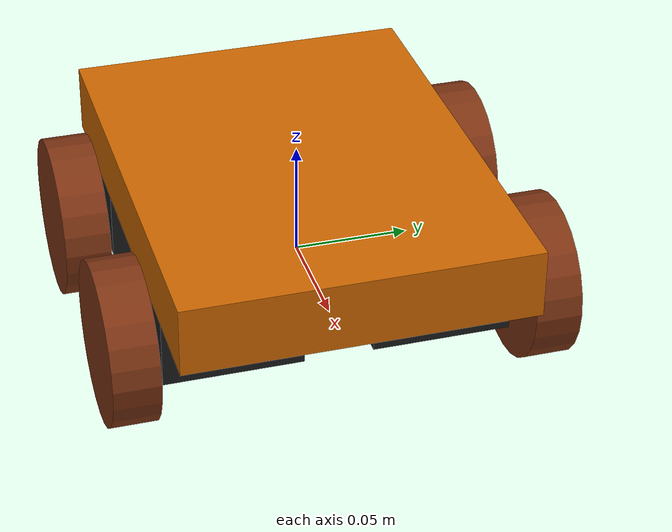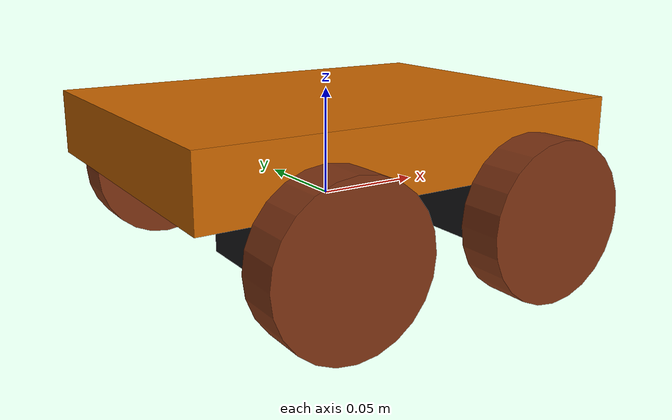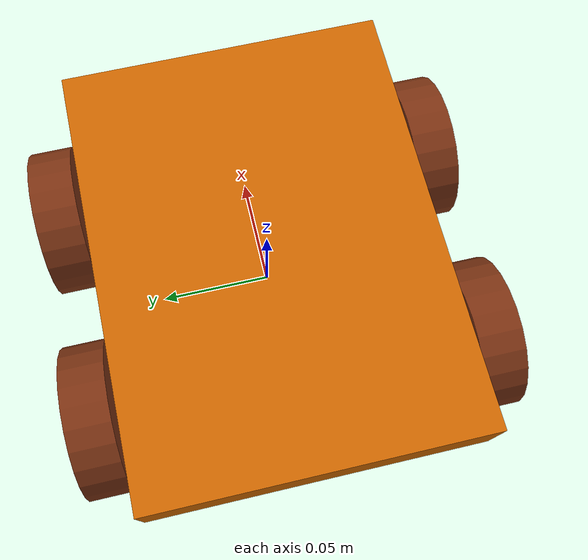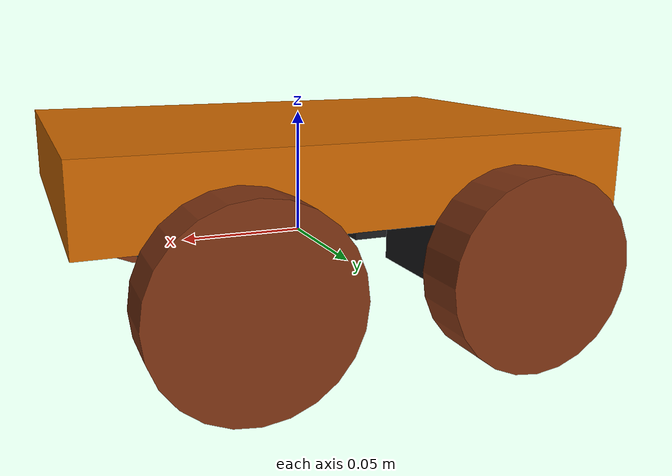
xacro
<?xml version="1.0"?>
<robot xmlns:xacro="http://www.ros.org/wiki/xacro" name="ylvov_robot">
    <xacro:include filename="$(find bot_description)/urdf/properties.xacro" />
	<xacro:include filename="$(find bot_description)/urdf/materials.xacro" />
	<xacro:include filename="$(find bot_description)/urdf/macros.xacro" />
	<xacro:include filename="$(find bot_description)/urdf/links.xacro" />
	<xacro:include filename="$(find bot_description)/urdf/joints.xacro" />
</robot>

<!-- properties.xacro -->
<robot xmlns:xacro="http://www.ros.org/wiki/xacro">
    <xacro:property name="base_length" value="0.2" />
    <xacro:property name="base_width" value="0.15" />
    <xacro:property name="base_height" value="0.03" />
    <xacro:property name="base_mass" value="1" />

    <xacro:property name="engine_length" value="0.06" />
    <xacro:property name="engine_width" value="0.03" />
    <xacro:property name="engine_height" value="0.03" />
    <xacro:property name="engine_mass" value="0.1" />

    <xacro:property name="shaft_length" value="0.004" />
    <xacro:property name="shaft_radius" value="0.003" />

    <xacro:property name="wheel_length" value="0.02" />
    <xacro:property name="wheel_radius" value="0.035" />
</robot>

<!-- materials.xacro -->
<robot xmlns:xacro="http://www.ros.org/wiki/xacro">
	<material name="black">
		<color rgba="0.0 0.0 0.0 1.0" />
	</material>
	<material name="orange">
		<color rgba="0.8 0.4 0.0 1.0" />
	</material>
	<material name="green">
		<color rgba="0.1 0.6 0.1 1.0" />
	</material>
	<material name="blue">
		<color rgba="0.1 0.1 0.8 1.0" />
	</material>
	<material name="brown">
		<color rgba="0.49 0.20 0.074 1.0" />
	</material>
	<material name="grey">
		<color rgba="0.1 0.1 0.11 1.0" />
	</material>
</robot>

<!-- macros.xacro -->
<robot xmlns:xacro="http://www.ros.org/wiki/xacro">
	<xacro:macro name="cylinder_inertia" params="m r h">
		<inertial>
			<origin xyz="0.0 0.0 0.0" rpy="0.0 0.0 0.0" />
			<mass value="${m}" />
			<inertia ixx="${m*(3.0*r*r+h*h)/12.0}" ixy="0" ixz="0" iyy="${m*(3.0*r*r+h*h)/12.0}" iyz="0" izz="${m*r*r/2.0}" />
		</inertial>
	</xacro:macro>
	<xacro:macro name="box_inertia" params="m x y z angle">
		<inertial>
			<origin xyz="0.0 0.0 0.0" rpy="0 0 2" />
			<mass value="${m}" />
			<inertia ixx="${m*(y*y+z*z)/12.0}" ixy="0" ixz="0" iyy="${m*(x*x+z*z)/12.0}" iyz="0" izz="${m*(x*x+y*y)/12.0}" />
		</inertial>
	</xacro:macro>
	<xacro:macro name="sphere_inertia" params="m r">
		<inertial>
			<origin xyz="0.0 0.0 0.0" rpy="0.0 0.0 0.0" />
			<mass value="${m}" />
			<inertia ixx="${2.0*m*r*r/5.0}" ixy="0" ixz="0" iyy="${2.0m*r*r/5.0}" iyz="0" izz="${2.0*m*r*r/5.0}" />
		</inertial>
	</xacro:macro>
</robot>

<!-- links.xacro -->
<robot xmlns:xacro="http://www.ros.org/wiki/xacro">
	<link name="base_footprint" />
	<link name="base_link">
		<xacro:box_inertia m="${base_mass}" x="${base_length}"
			y="${base_width}" z="${base_height}" angle="0"/>
		<visual>
			<origin xyz="0.0 0.0 0.0" rpy="0.0 0.0 0.0" />
			<geometry>
				<box size="${base_length} ${base_width} ${base_height}" />
			</geometry>
			<material name="orange" />
		</visual>
		<collision>
			<origin xyz="0.0 0.0 0.0" rpy="0.0 0.0 0.0" />
			<geometry>
				<box size="${base_length} ${base_width} ${base_height}" />
			</geometry>
		</collision>
	</link>
	<link name="front_right_engine">
			<xacro:box_inertia m="${engine_mass}" x="${engine_length}"
			y="${engine_width}" z="${engine_height}" angle="${pi/4}"/>
		<visual>
			<origin xyz="0.0 0.0 0.0" rpy="0.0 0.0 ${pi/2}" />
			<geometry>
				<box size="${engine_length} ${engine_width} ${engine_height}" />
			</geometry>
			<material name="grey" />
		</visual>
		<collision>
			<origin xyz="0.0 0.0 0.0" rpy="0.0 0.0 ${pi/2}" />
			<geometry>
				<box size="${engine_length} ${engine_width} ${engine_height}" />
			</geometry>
		</collision>
	</link>
	<link name="front_right_shaft">
		<visual>
			<origin xyz="0.0 0.0 0.0" rpy="${pi/2} 0.0 0.0" />
			<geometry>
				<cylinder radius="${shaft_radius}" length="${shaft_length}"/>
			</geometry>
			<material name="black" />
		</visual>
		<collision>
			<origin xyz="0.0 0.0 0.0" rpy="${pi/2} 0.0 0.0" />
			<geometry>
				<cylinder radius="${shaft_radius}" length="${shaft_length}"/>
			</geometry>
		</collision>
	</link>
	<link name="front_right_wheel">
		<visual>
			<origin xyz="0.0 0.0 0.0" rpy="${pi/2} 0.0 0.0" />
			<geometry>
				<cylinder radius="${wheel_radius}" length="${wheel_length}"/>
			</geometry>
			<material name="brown" />
		</visual>
		<collision>
			<origin xyz="0.0 0.0 0.0" rpy="${pi/2} 0.0 0.0" />
			<geometry>
				<cylinder radius="${wheel_radius}" length="${wheel_length}"/>
			</geometry>
		</collision>
	</link>
	<link name="front_left_engine">
		<visual>
			<origin xyz="0.0 0.0 0.0" rpy="0.0 0.0 ${pi/2}" />
			<geometry>
				<box size="${engine_length} ${engine_width} ${engine_height}" />
			</geometry>
			<material name="grey" />
		</visual>
		<collision>
			<origin xyz="0.0 0.0 0.0" rpy="0.0 0.0 ${pi/2}" />
			<geometry>
				<box size="${engine_length} ${engine_width} ${engine_height}" />
			</geometry>
		</collision>
	</link>
	<link name="front_left_shaft">
		<visual>
			<origin xyz="0.0 0.0 0.0" rpy="${pi/2} 0.0 0.0" />
			<geometry>
				<cylinder radius="${shaft_radius}" length="${shaft_length}"/>
			</geometry>
			<material name="black" />
		</visual>
		<collision>
			<origin xyz="0.0 0.0 0.0" rpy="${pi/2} 0.0 0.0" />
			<geometry>
				<cylinder radius="${shaft_radius}" length="${shaft_length}"/>
			</geometry>
		</collision>
	</link>
	<link name="front_left_wheel">
		<visual>
			<origin xyz="0.0 0.0 0.0" rpy="${pi/2} 0.0 0.0" />
			<geometry>
				<cylinder radius="${wheel_radius}" length="${wheel_length}"/>
			</geometry>
			<material name="brown" />
		</visual>
		<collision>
			<origin xyz="0.0 0.0 0.0" rpy="${pi/2} 0.0 0.0" />
			<geometry>
				<cylinder radius="${wheel_radius}" length="${wheel_length}"/>
			</geometry>
		</collision>
	</link>
	<link name="rear_right_engine">
		<visual>
			<origin xyz="0.0 0.0 0.0" rpy="0.0 0.0 ${pi/2}" />
			<geometry>
				<box size="${engine_length} ${engine_width} ${engine_height}" />
			</geometry>
			<material name="grey" />
		</visual>
		<collision>
			<origin xyz="0.0 0.0 0.0" rpy="0.0 0.0 ${pi/2}" />
			<geometry>
				<box size="${engine_length} ${engine_width} ${engine_height}" />
			</geometry>
		</collision>
	</link>
	<link name="rear_right_shaft">
		<visual>
			<origin xyz="0.0 0.0 0.0" rpy="${pi/2} 0.0 0.0" />
			<geometry>
				<cylinder radius="${shaft_radius}" length="${shaft_length}"/>
			</geometry>
			<material name="black" />
		</visual>
		<collision>
			<origin xyz="0.0 0.0 0.0" rpy="${pi/2} 0.0 0.0" />
			<geometry>
				<cylinder radius="${shaft_radius}" length="${shaft_length}"/>
			</geometry>
		</collision>
	</link>
	<link name="rear_right_wheel">
		<visual>
			<origin xyz="0.0 0.0 0.0" rpy="${pi/2} 0.0 0.0" />
			<geometry>
				<cylinder radius="${wheel_radius}" length="${wheel_length}"/>
			</geometry>
			<material name="brown" />
		</visual>
		<collision>
			<origin xyz="0.0 0.0 0.0" rpy="${pi/2} 0.0 0.0" />
			<geometry>
				<cylinder radius="${wheel_radius}" length="${wheel_length}"/>
			</geometry>
		</collision>
	</link>
	<link name="rear_left_engine">
		<visual>
			<origin xyz="0.0 0.0 0.0" rpy="0.0 0.0 ${pi/2}" />
			<geometry>
				<box size="${engine_length} ${engine_width} ${engine_height}" />
			</geometry>
			<material name="grey" />
		</visual>
		<collision>
			<origin xyz="0.0 0.0 0.0" rpy="0.0 0.0 ${pi/2}" />
			<geometry>
				<box size="${engine_length} ${engine_width} ${engine_height}" />
			</geometry>
		</collision>
	</link>
	<link name="rear_left_shaft">
		<visual>
			<origin xyz="0.0 0.0 0.0" rpy="${pi/2} 0.0 0.0" />
			<geometry>
				<cylinder radius="${shaft_radius}" length="${shaft_length}"/>
			</geometry>
			<material name="black" />
		</visual>
		<collision>
			<origin xyz="0.0 0.0 0.0" rpy="${pi/2} 0.0 0.0" />
			<geometry>
				<cylinder radius="${shaft_radius}" length="${shaft_length}"/>
			</geometry>
		</collision>
	</link>
	<link name="rear_left_wheel">
		<visual>
			<origin xyz="0.0 0.0 0.0" rpy="${pi/2} 0.0 0.0" />
			<geometry>
				<cylinder radius="${wheel_radius}" length="${wheel_length}"/>
			</geometry>
			<material name="brown" />
		</visual>
		<collision>
			<origin xyz="0.0 0.0 0.0" rpy="${pi/2} 0.0 0.0" />
			<geometry>
				<cylinder radius="${wheel_radius}" length="${wheel_length}"/>
			</geometry>
		</collision>
	</link>
</robot>

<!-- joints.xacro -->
<robot xmlns:xacro="http://www.ros.org/wiki/xacro">
    <joint name="base_joint" type="fixed">
        <parent link="base_footprint"/>
        <child link="base_link"/>
        <origin xyz="0.0 0.0 ${base_height/2 + wheel_radius/2}" rpy="0.0 0.0 0.0"/>
    </joint>
    <joint name="base_to_front_right_engine" type="fixed">
        <origin xyz="${base_length/4} ${-1*(base_width/2-engine_length/2)} ${-1*(base_height/2 + engine_height/2)}" rpy="0.0 0.0 0.0"/>
        <parent link="base_link"/>
        <child link="front_right_engine"/>
        <axis xyz="0.0 0.0 0.0"/>
    </joint>
    <joint name="front_right_engine_to_front_right_shaft" type="continuous">
        <parent link="front_right_engine"/>
        <child link="front_right_shaft"/>
        <axis xyz="0 1 0"/>
        <origin xyz="0 ${-1*(engine_length/2 + 0.0001 + shaft_length/2)} 0" rpy="0 0 0"/>
    </joint>
    <joint name="front_right_shaft_to_front_right_wheel" type="fixed">
        <parent link="front_right_shaft"/>
        <child link="front_right_wheel"/>
        <origin xyz="0 ${-1*(shaft_length/2 + wheel_length/2)} 0" rpy="0 0 0"/>
    </joint>
    <joint name="base_to_front_left_engine" type="fixed">
        <origin xyz="${base_length/4} ${(base_width/2-engine_length/2)} ${-1*(base_height/2 + engine_height/2)}" rpy="0.0 0.0 0.0"/>
        <parent link="base_link"/>
        <child link="front_left_engine"/>
        <axis xyz="0.0 0.0 0.0"/>
    </joint>
    <joint name="front_left_engine_to_front_left_shaft" type="continuous">
        <parent link="front_left_engine"/>
        <child link="front_left_shaft"/>
        <axis xyz="0 1 0"/>
        <origin xyz="0 ${(engine_length/2 + 0.0001 + shaft_length/2)} 0" rpy="0 0 0"/>
    </joint>
    <joint name="front_left_shaft_to_front_left_wheel" type="fixed">
        <parent link="front_left_shaft"/>
        <child link="front_left_wheel"/>
        <origin xyz="0 ${(shaft_length/2 + wheel_length/2)} 0" rpy="0 0 0"/>
    </joint>
    <joint name="base_to_rear_right_engine" type="fixed">
        <origin xyz="${-base_length/4} ${-1*(base_width/2-engine_length/2)} ${-1*(base_height/2 + engine_height/2)}" rpy="0.0 0.0 0.0"/>
        <parent link="base_link"/>
        <child link="rear_right_engine"/>
        <axis xyz="0.0 0.0 0.0"/>
    </joint>
    <joint name="rear_right_engine_to_rear_right_shaft" type="continuous">
        <parent link="rear_right_engine"/>
        <child link="rear_right_shaft"/>
        <axis xyz="0 1 0"/>
        <origin xyz="0 ${-1*(engine_length/2 + 0.0001 + shaft_length/2)} 0" rpy="0 0 0"/>
    </joint>
    <joint name="rear_right_shaft_to_rear_right_wheel" type="fixed">
        <parent link="rear_right_shaft"/>
        <child link="rear_right_wheel"/>
        <origin xyz="0 ${-1*(shaft_length/2 + wheel_length/2)} 0" rpy="0 0 0"/>
    </joint>
    <joint name="base_to_rear_left_engine" type="fixed">
        <origin xyz="${-base_length/4} ${base_width/2-engine_length/2} ${-1*(base_height/2 + engine_height/2)}" rpy="0.0 0.0 0.0"/>
        <parent link="base_link"/>
        <child link="rear_left_engine"/>
        <axis xyz="0.0 0.0 0.0"/>
    </joint>
    <joint name="rear_left_engine_to_rear_left_shaft" type="continuous">
        <parent link="rear_left_engine"/>
        <child link="rear_left_shaft"/>
        <axis xyz="0 1 0"/>
        <origin xyz="0 ${engine_length/2 + 0.0001 + shaft_length/2} 0" rpy="0 0 0"/>
    </joint>
    <joint name="rear_left_shaft_to_rear_left_wheel" type="fixed">
        <parent link="rear_left_shaft"/>
        <child link="rear_left_wheel"/>
        <origin xyz="0 ${shaft_length/2 + wheel_length/2} 0" rpy="0 0 0"/>
    </joint>
</robot>
